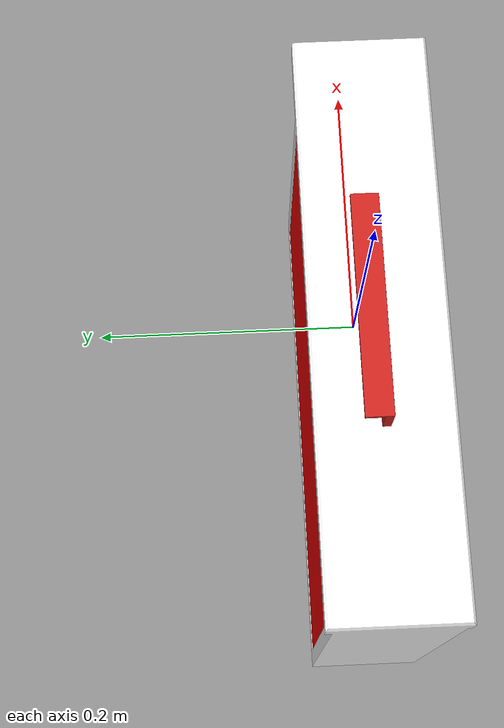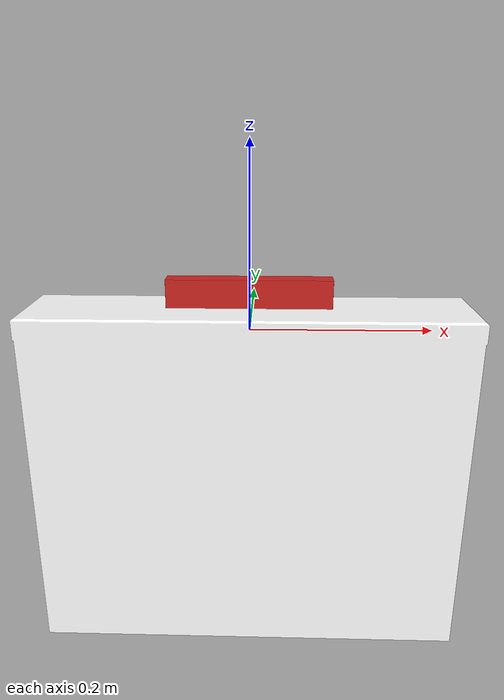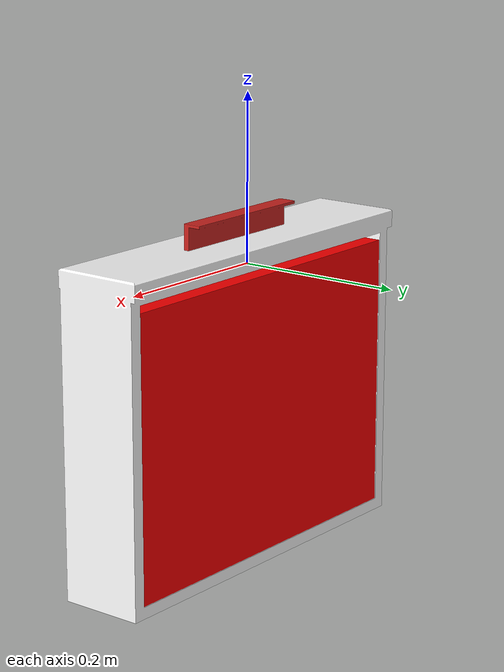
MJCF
<mujoco model="Drawer_814ccbab">
  <compiler autolimits="true" boundmass="0.01" angle="radian"/>
  <default>
    <default class="/">
      <default class="__VISUAL_MJT__">
        <geom contype="0" conaffinity="0" group="0"/>
      </default>
      <default class="__STRUCTURAL_MJT__">
        <geom contype="8" conaffinity="15" group="4" friction="0.90000000000000002 0.90000000000000002 0.001" solref="0.025000000000000001 1" solimp="0.998 0.998 0.001"/>
      </default>
      <default class="__DYNAMIC_MJT__">
        <geom contype="1" conaffinity="15" group="4" friction="0.90000000000000002 0.90000000000000002 0.001" solref="0.025000000000000001 1" solimp="0.998 0.998 0.001"/>
      </default>
    </default>
  </default>
  <asset>
    <material name="material_WhiteWoodClean" class="/" specular="0.5" shininess="0.5" rgba="1 1 1 1"/>
    <mesh name="Drawer_814ccbab_Mesh_01_a212422b" class="/" file="Drawer_814ccbab_Mesh_01_a212422b/Drawer_814ccbab_Mesh_01_a212422b.obj" scale="1 1 1" inertia="legacy"/>
    <texture name="HammeredMetal_AlbedoTransparency_2" type="2d" file="HammeredMetal_AlbedoTransparency.png"/>
    <material name="material_HammeredMetal_AlbedoTransparency_2" class="/" texture="HammeredMetal_AlbedoTransparency_2" specular="0.5" shininess="0.5" rgba="1 0.93407709999999999 0.81617649999999997 1"/>
    <mesh name="Drawer_814ccbab_handle_3_178mm_01_41148f2a" class="/" file="Drawer_814ccbab_handle_3_178mm_01_41148f2a/Drawer_814ccbab_handle_3_178mm_01_41148f2a.obj" scale="1 1 1" inertia="legacy"/>
  </asset>
  <worldbody>
    <body name="Drawer_814ccbab">
      <body name="Drawer_814ccbab_Mesh_01_a212422b" pos="-0 -0.017799973487854004 0.006999969482421875" quat="1 0 0 0">
        <geom name="Drawer_814ccbab_Mesh_01_a212422b" class="__VISUAL_MJT__" type="mesh" material="material_WhiteWoodClean" mesh="Drawer_814ccbab_Mesh_01_a212422b"/>
        <joint name="Drawer_814ccbab_joint" class="/" type="slide" pos="-0 0.017799973487854004 -0.006999969482421875" axis="0 0 1" stiffness="0" range="0 0.309" damping="0.10000000000000001" frictionloss="0"/>
        <site name="Drawer_814ccbab_Mesh_01_a212422b_Receptacle_0" class="/" type="box" rgba="1 0 0 1" size="0.22515109181404114 0.04827495664358139 0.17191322147846222" pos="-0.00021958351135253906 -0.00050109624862670898 -0.18714666366577148" quat="0 1 0 0"/>
        <geom name="Drawer_814ccbab_Mesh_01_a212422b_PrimitiveCollider_0" class="__DYNAMIC_MJT__" type="box" size="0.23976141214370728 0.056157786399126053 0.011387884616851807" rgba="0 1 0 1" pos="-0 -0.00044542551040649414 0.0044009685516357422" quat="0 1 0 0"/>
        <geom name="Drawer_814ccbab_Mesh_01_a212422b_PrimitiveCollider_1" class="__DYNAMIC_MJT__" type="box" size="0.23976141214370728 0.052743144333362579 0.007381439208984375" rgba="0 1 0 1" pos="-0 -0.0033137202262878418 -0.36686229705810547" quat="0 1 0 0"/>
        <geom name="Drawer_814ccbab_Mesh_01_a212422b_PrimitiveCollider_2" class="__DYNAMIC_MJT__" type="box" size="0.19288793206214905 0.05221841111779213 0.0073814410716295242" rgba="0 1 0 1" pos="-0.2313377857208252 -0.0027890205383300781 -0.18137359619140625" quat="0 0.70710678118654757 0 0.70710678118654757"/>
        <geom name="Drawer_814ccbab_Mesh_01_a212422b_PrimitiveCollider_3" class="__DYNAMIC_MJT__" type="box" size="0.19288802146911621 0.05221841111779213 0.0073814443312585354" rgba="0 1 0 1" pos="0.23086214065551758 -0.0027890205383300781 -0.18137359619140625" quat="0 0.70710678118654757 0 0.70710678118654757"/>
        <geom name="Drawer_814ccbab_Mesh_01_a212422b_PrimitiveCollider_4" class="__DYNAMIC_MJT__" type="box" size="0.19288797676563263 0.23735302686691284 0.006772734897211194" rgba="0 1 0 1" pos="-0.00072526931762695312 -0.046320361137390137 -0.18137335777282715" quat="-0.49999994039535345 0.49999999999999822 0.500000059604643 0.49999999999999822"/>
        <body name="Drawer_814ccbab_handle_3_178mm_01_41148f2a" pos="-0 0 0.019999980926513672" quat="1 0 0 0">
          <geom name="Drawer_814ccbab_handle_3_178mm_01_41148f2a" class="__VISUAL_MJT__" type="mesh" material="material_HammeredMetal_AlbedoTransparency_2" mesh="Drawer_814ccbab_handle_3_178mm_01_41148f2a"/>
          <geom name="Drawer_814ccbab_handle_3_178mm_01_41148f2a_PrimitiveCollider_0" class="__DYNAMIC_MJT__" type="box" size="0.088752083480358124 0.0035549115855246782 0.016431529074907303" rgba="0 1 0 1" pos="-0 0 0.016289949417114258" quat="0 1 0 0"/>
          <geom name="Drawer_814ccbab_handle_3_178mm_01_41148f2a_PrimitiveCollider_1" class="__DYNAMIC_MJT__" type="box" size="0.088752083480358124 0.0077598136849701405 0.0019227256998419762" rgba="0 1 0 1" pos="-0 0.011284887790679932 0.030798912048339844" quat="0 1 0 0"/>
        </body>
      </body>
    </body>
  </worldbody>
  <contact>
    <exclude name="//unnamed_contact_0" body1="Drawer_814ccbab_Mesh_01_a212422b" body2="Drawer_814ccbab_handle_3_178mm_01_41148f2a"/>
  </contact>
</mujoco>
